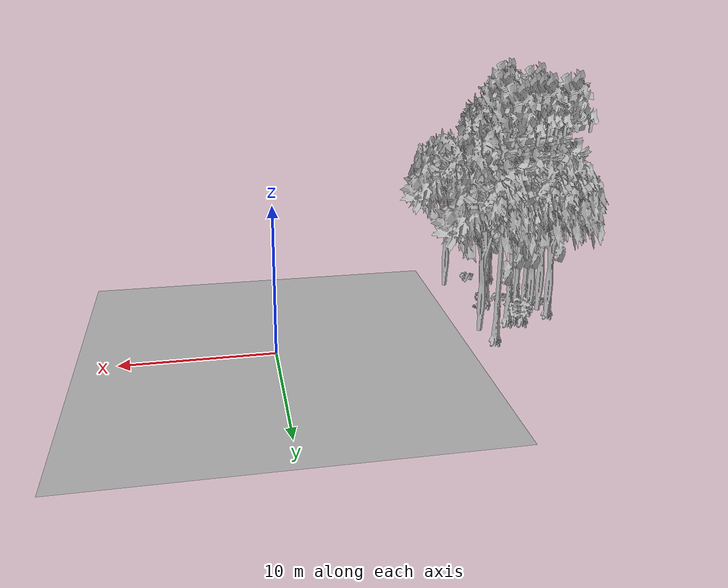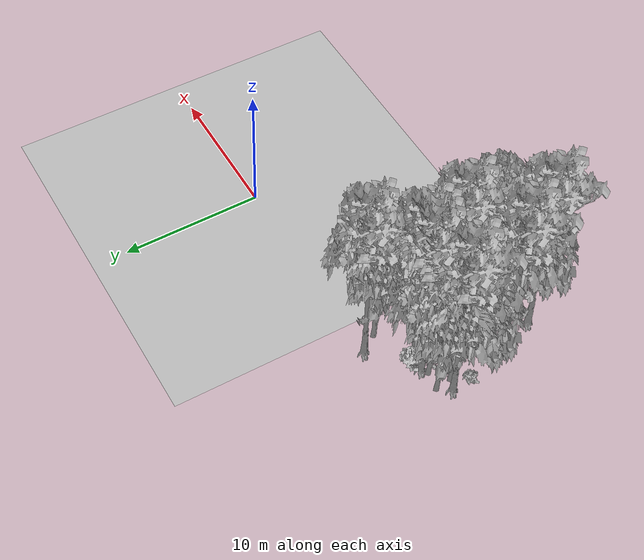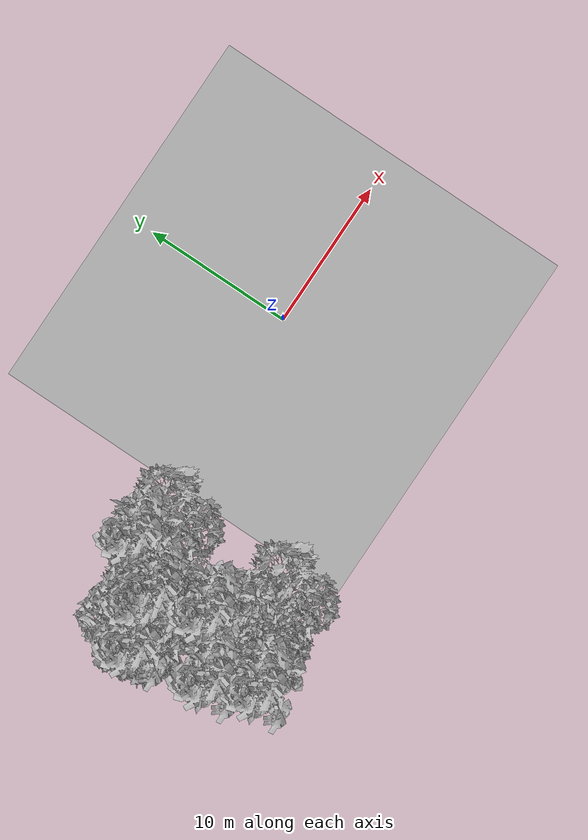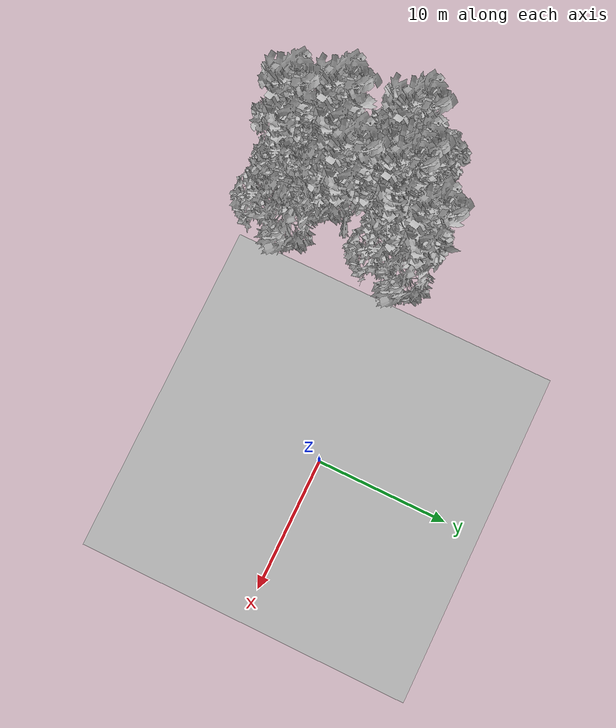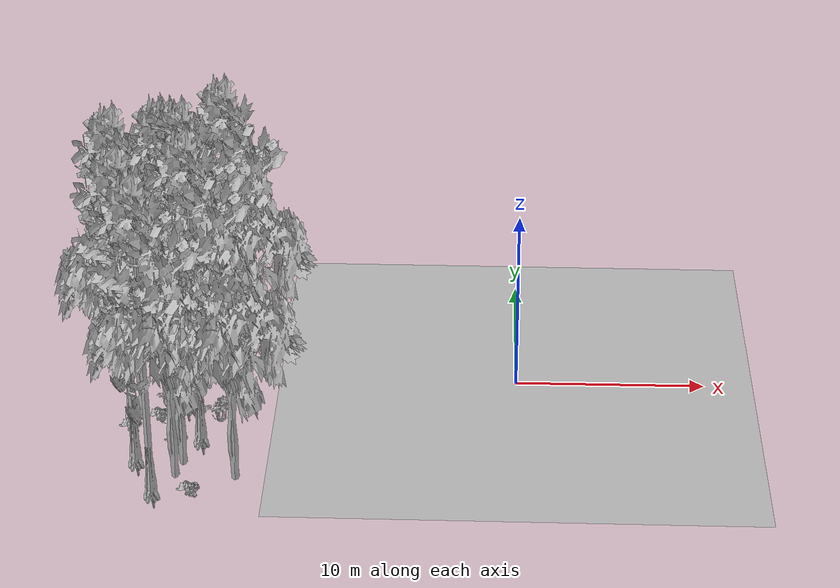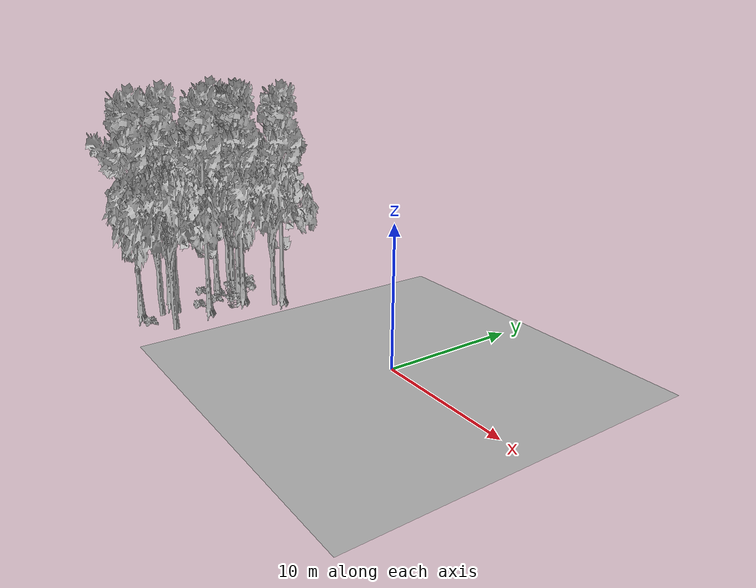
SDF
<sdf version="1.7">
 <world name="default">
  <model name="ground_plane">
   <static>1</static>
   <link name="link">
    <collision name="collision">
     <pose>-50 0 0 0 -0 0</pose>
     <geometry><plane><normal>0 0 1</normal><size>80 80</size></plane></geometry>
     <surface><contact><ode><min_depth>0.01</min_depth><max_vel>0</max_vel></ode></contact></surface>
    </collision>
    <visual name="grass">
     <cast_shadows>0</cast_shadows>
     <geometry>
      <mesh>
       <scale>0.46714285714285714 0.46714285714285714 0.1</scale>
       <uri>file://grass_plane/meshes/grass_plane.dae</uri>
      </mesh>
     </geometry>
    </visual>
   </link>
  </model>
  <model name="Tree 33">
   <static>1</static>
   <pose>-20.10717213867828 -3.379073356409677 0 1.57079 -0 0</pose>
   <link name="link">
    <collision name="collision">
     <geometry><mesh><scale>3.5 5 3.5</scale><uri>model://tree_9/meshes/tree_9.obj</uri></mesh></geometry>
    </collision>
    <visual name="visual">
     <geometry><mesh><scale>3.5 5 3.5</scale><uri>model://tree_9/meshes/tree_9.obj</uri></mesh></geometry>
    </visual>
   </link>
  </model>
  <model name="Tree 52">
   <static>1</static>
   <pose>-18.159195509183068 -10.569485854259277 0 1.57079 -0 0</pose>
   <link name="link">
    <collision name="collision">
     <geometry><mesh><scale>3.5 5 3.5</scale><uri>model://tree_9/meshes/tree_9.obj</uri></mesh></geometry>
    </collision>
    <visual name="visual">
     <geometry><mesh><scale>3.5 5 3.5</scale><uri>model://tree_9/meshes/tree_9.obj</uri></mesh></geometry>
    </visual>
   </link>
  </model>
  <model name="Tree 65">
   <static>1</static>
   <pose>-17.3322438243804 -2.6752179364823476 0 1.57079 -0 0</pose>
   <link name="link">
    <collision name="collision">
     <geometry><mesh><scale>3.5 5 3.5</scale><uri>model://tree_9/meshes/tree_9.obj</uri></mesh></geometry>
    </collision>
    <visual name="visual">
     <geometry><mesh><scale>3.5 5 3.5</scale><uri>model://tree_9/meshes/tree_9.obj</uri></mesh></geometry>
    </visual>
   </link>
  </model>
  <model name="Tree 95">
   <static>1</static>
   <pose>-18.437235818443106 -2.6732585375812405 0 1.57079 -0 0</pose>
   <link name="link">
    <collision name="collision">
     <geometry><mesh><scale>3.5 5 3.5</scale><uri>model://tree_2/meshes/tree_2.obj</uri></mesh></geometry>
    </collision>
    <visual name="visual">
     <geometry><mesh><scale>3.5 5 3.5</scale><uri>model://tree_2/meshes/tree_2.obj</uri></mesh></geometry>
    </visual>
   </link>
  </model>
  <model name="Tree 121">
   <static>1</static>
   <pose>-19.31561842491381 -7.7984532568027305 0 1.57079 -0 0</pose>
   <link name="link">
    <collision name="collision">
     <geometry><mesh><scale>3.5 5 3.5</scale><uri>model://tree_9/meshes/tree_9.obj</uri></mesh></geometry>
    </collision>
    <visual name="visual">
     <geometry><mesh><scale>3.5 5 3.5</scale><uri>model://tree_9/meshes/tree_9.obj</uri></mesh></geometry>
    </visual>
   </link>
  </model>
  <model name="Tree 173">
   <static>1</static>
   <pose>-14.248451899463813 -1.132699482293404 0 1.57079 -0 0</pose>
   <link name="link">
    <collision name="collision">
     <geometry><mesh><scale>3.5 5 3.5</scale><uri>model://tree_2/meshes/tree_2.obj</uri></mesh></geometry>
    </collision>
    <visual name="visual">
     <geometry><mesh><scale>3.5 5 3.5</scale><uri>model://tree_2/meshes/tree_2.obj</uri></mesh></geometry>
    </visual>
   </link>
  </model>
  <model name="Tree 174">
   <static>1</static>
   <pose>-19.70345744123549 -2.4664534479749847 0 1.57079 -0 0</pose>
   <link name="link">
    <collision name="collision">
     <geometry><mesh><scale>3.5 5 3.5</scale><uri>model://tree_2/meshes/tree_2.obj</uri></mesh></geometry>
    </collision>
    <visual name="visual">
     <geometry><mesh><scale>3.5 5 3.5</scale><uri>model://tree_2/meshes/tree_2.obj</uri></mesh></geometry>
    </visual>
   </link>
  </model>
  <model name="Tree 264">
   <static>1</static>
   <pose>-16.932910082627988 -8.133555834925119 0 1.57079 -0 0</pose>
   <link name="link">
    <collision name="collision">
     <geometry><mesh><scale>3.5 5 3.5</scale><uri>model://tree_2/meshes/tree_2.obj</uri></mesh></geometry>
    </collision>
    <visual name="visual">
     <geometry><mesh><scale>3.5 5 3.5</scale><uri>model://tree_2/meshes/tree_2.obj</uri></mesh></geometry>
    </visual>
   </link>
  </model>
  <model name="Tree 289">
   <static>1</static>
   <pose>-17.824414194732714 -2.4415508758673354 0 1.57079 -0 0</pose>
   <link name="link">
    <collision name="collision">
     <geometry><mesh><scale>3.5 5 3.5</scale><uri>model://tree_9/meshes/tree_9.obj</uri></mesh></geometry>
    </collision>
    <visual name="visual">
     <geometry><mesh><scale>3.5 5 3.5</scale><uri>model://tree_9/meshes/tree_9.obj</uri></mesh></geometry>
    </visual>
   </link>
  </model>
  <model name="Tree 384">
   <static>1</static>
   <pose>-16.21252205421774 -5.766838036372974 0 1.57079 -0 0</pose>
   <link name="link">
    <collision name="collision">
     <geometry><mesh><scale>3.5 5 3.5</scale><uri>model://tree_9/meshes/tree_9.obj</uri></mesh></geometry>
    </collision>
    <visual name="visual">
     <geometry><mesh><scale>3.5 5 3.5</scale><uri>model://tree_9/meshes/tree_9.obj</uri></mesh></geometry>
    </visual>
   </link>
  </model>
  <model name="Tree 394">
   <static>1</static>
   <pose>-14.173646098304474 -9.358314669752474 0 1.57079 -0 0</pose>
   <link name="link">
    <collision name="collision">
     <geometry><mesh><scale>3.5 5 3.5</scale><uri>model://tree_2/meshes/tree_2.obj</uri></mesh></geometry>
    </collision>
    <visual name="visual">
     <geometry><mesh><scale>3.5 5 3.5</scale><uri>model://tree_2/meshes/tree_2.obj</uri></mesh></geometry>
    </visual>
   </link>
  </model>
  <model name="Tree 495">
   <static>1</static>
   <pose>-14.901446470722949 0.0520298757717228 0 1.57079 -0 0</pose>
   <link name="link">
    <collision name="collision">
     <geometry><mesh><scale>3.5 5 3.5</scale><uri>model://tree_9/meshes/tree_9.obj</uri></mesh></geometry>
    </collision>
    <visual name="visual">
     <geometry><mesh><scale>3.5 5 3.5</scale><uri>model://tree_9/meshes/tree_9.obj</uri></mesh></geometry>
    </visual>
   </link>
  </model>
  <model name="Tree 521">
   <static>1</static>
   <pose>-17.203131730825366 -9.279957704083238 0 1.57079 -0 0</pose>
   <link name="link">
    <collision name="collision">
     <geometry><mesh><scale>3.5 5 3.5</scale><uri>model://tree_2/meshes/tree_2.obj</uri></mesh></geometry>
    </collision>
    <visual name="visual">
     <geometry><mesh><scale>3.5 5 3.5</scale><uri>model://tree_2/meshes/tree_2.obj</uri></mesh></geometry>
    </visual>
   </link>
  </model>
  <model name="Tree 560">
   <static>1</static>
   <pose>-16.747347549463534 -2.550340728334646 0 1.57079 -0 0</pose>
   <link name="link">
    <collision name="collision">
     <geometry><mesh><scale>3.5 5 3.5</scale><uri>model://tree_9/meshes/tree_9.obj</uri></mesh></geometry>
    </collision>
    <visual name="visual">
     <geometry><mesh><scale>3.5 5 3.5</scale><uri>model://tree_9/meshes/tree_9.obj</uri></mesh></geometry>
    </visual>
   </link>
  </model>
  <model name="Tree 626">
   <static>1</static>
   <pose>-19.524032013488625 -3.6366183972583883 0 1.57079 -0 0</pose>
   <link name="link">
    <collision name="collision">
     <geometry><mesh><scale>3.5 5 3.5</scale><uri>model://tree_2/meshes/tree_2.obj</uri></mesh></geometry>
    </collision>
    <visual name="visual">
     <geometry><mesh><scale>3.5 5 3.5</scale><uri>model://tree_2/meshes/tree_2.obj</uri></mesh></geometry>
    </visual>
   </link>
  </model>
  <model name="Bush 97">
   <static>1</static>
   <pose>-15.360545623958824 -4.237047152753412 0 1.57079 -0 0</pose>
   <link name="link">
    <collision name="collision">
     <geometry><mesh><scale>2 2 2</scale><uri>model://bush_4/meshes/bush_4.obj</uri></mesh></geometry>
     <surface><contact><collide_without_contact>false</collide_without_contact></contact></surface>
    </collision>
    <visual name="visual">
     <geometry><mesh><scale>2 2 2</scale><uri>model://bush_4/meshes/bush_4.obj</uri></mesh></geometry>
    </visual>
   </link>
  </model>
  <model name="Bush 203">
   <static>1</static>
   <pose>-18.03413783080284 -3.1637060960197374 0 1.57079 -0 0</pose>
   <link name="link">
    <collision name="collision">
     <geometry><mesh><scale>2 2 2</scale><uri>model://bush_4/meshes/bush_4.obj</uri></mesh></geometry>
     <surface><contact><collide_without_contact>false</collide_without_contact></contact></surface>
    </collision>
    <visual name="visual">
     <geometry><mesh><scale>2 2 2</scale><uri>model://bush_4/meshes/bush_4.obj</uri></mesh></geometry>
    </visual>
   </link>
  </model>
  <model name="Bush 312">
   <static>1</static>
   <pose>-18.59437274514851 -3.885488203551823 0 1.57079 -0 0</pose>
   <link name="link">
    <collision name="collision">
     <geometry><mesh><scale>2 2 2</scale><uri>model://bush_2/meshes/bush_2.obj</uri></mesh></geometry>
     <surface><contact><collide_without_contact>false</collide_without_contact></contact></surface>
    </collision>
    <visual name="visual">
     <geometry><mesh><scale>2 2 2</scale><uri>model://bush_2/meshes/bush_2.obj</uri></mesh></geometry>
    </visual>
   </link>
  </model>
  <model name="Bush 320">
   <static>1</static>
   <pose>-16.30389244433621 -10.52939418719312 0 1.57079 -0 0</pose>
   <link name="link">
    <collision name="collision">
     <geometry><mesh><scale>2 2 2</scale><uri>model://bush_2/meshes/bush_2.obj</uri></mesh></geometry>
     <surface><contact><collide_without_contact>false</collide_without_contact></contact></surface>
    </collision>
    <visual name="visual">
     <geometry><mesh><scale>2 2 2</scale><uri>model://bush_2/meshes/bush_2.obj</uri></mesh></geometry>
    </visual>
   </link>
  </model>
  <model name="Bush 438">
   <static>1</static>
   <pose>-19.958768201999405 -4.904845088690088 0 1.57079 -0 0</pose>
   <link name="link">
    <collision name="collision">
     <geometry><mesh><scale>2 2 2</scale><uri>model://bush_2/meshes/bush_2.obj</uri></mesh></geometry>
     <surface><contact><collide_without_contact>false</collide_without_contact></contact></surface>
    </collision>
    <visual name="visual">
     <geometry><mesh><scale>2 2 2</scale><uri>model://bush_2/meshes/bush_2.obj</uri></mesh></geometry>
    </visual>
   </link>
  </model>
  <model name="Bush 498">
   <static>1</static>
   <pose>-17.41833815352113 -6.150124395512428 0 1.57079 -0 0</pose>
   <link name="link">
    <collision name="collision">
     <geometry><mesh><scale>2 2 2</scale><uri>model://bush_2/meshes/bush_2.obj</uri></mesh></geometry>
     <surface><contact><collide_without_contact>false</collide_without_contact></contact></surface>
    </collision>
    <visual name="visual">
     <geometry><mesh><scale>2 2 2</scale><uri>model://bush_2/meshes/bush_2.obj</uri></mesh></geometry>
    </visual>
   </link>
  </model>
  <model name="Bush 584">
   <static>1</static>
   <pose>-17.78304559196868 -4.531379322440486 0 1.57079 -0 0</pose>
   <link name="link">
    <collision name="collision">
     <geometry><mesh><scale>2 2 2</scale><uri>model://bush_2/meshes/bush_2.obj</uri></mesh></geometry>
     <surface><contact><collide_without_contact>false</collide_without_contact></contact></surface>
    </collision>
    <visual name="visual">
     <geometry><mesh><scale>2 2 2</scale><uri>model://bush_2/meshes/bush_2.obj</uri></mesh></geometry>
    </visual>
   </link>
  </model>
  <model name="Bush 596">
   <static>1</static>
   <pose>-17.380634632473992 -2.188527053876868 0 1.57079 -0 0</pose>
   <link name="link">
    <collision name="collision">
     <geometry><mesh><scale>2 2 2</scale><uri>model://bush_1/meshes/bush_1.obj</uri></mesh></geometry>
     <surface><contact><collide_without_contact>false</collide_without_contact></contact></surface>
    </collision>
    <visual name="visual">
     <geometry><mesh><scale>2 2 2</scale><uri>model://bush_1/meshes/bush_1.obj</uri></mesh></geometry>
    </visual>
   </link>
  </model>
 </world>
</sdf>
